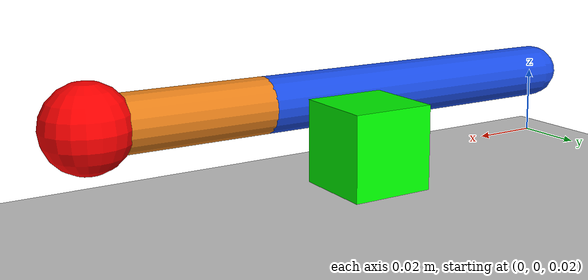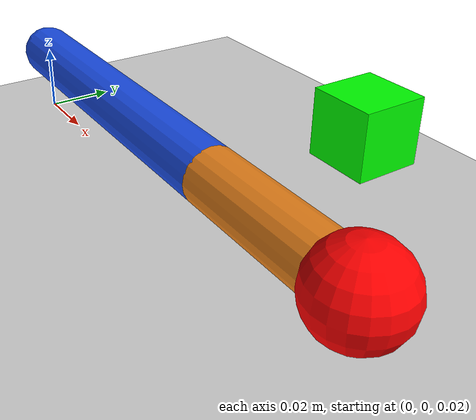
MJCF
<mujoco model="vision_guided_arm">
    <compiler angle="radian"/>

    <option
        timestep="0.002"
        gravity="0 0 0"
    />

    <visual>
        <headlight
            ambient="0.3 0.3 0.3"
            diffuse="0.8 0.8 0.8"
        />

        <global
            offwidth="640"
            offheight="480"
        />
    </visual>

    <worldbody>
        <geom
            name="floor"
            type="plane"
            size="1 1 0.1"
            rgba="0.8 0.8 0.8 1"
        />

        <camera
            name="overhead_camera"
            pos="0 0 0.5"
            xyaxes="1 0 0 0 1 0"
            fovy="60"
        />

        <body
            name="link_1"
            pos="0 0 0.04"
        >
            <joint
                name="shoulder"
                type="hinge"
                axis="0 0 1"
                damping="0.02"
                limited="true"
                range="-3.0 3.0"
            />

            <geom
                name="link_1_geom"
                type="capsule"
                fromto="0 0 0 0.1 0 0"
                size="0.008"
                mass="0.1"
                rgba="0.1 0.3 0.9 1"
                contype="0"
                conaffinity="0"
            />

            <body
                name="link_2"
                pos="0.1 0 0"
            >
                <joint
                    name="elbow"
                    type="hinge"
                    axis="0 0 1"
                    damping="0.02"
                    limited="true"
                    range="-3.0 3.0"
                />

                <geom
                    name="link_2_geom"
                    type="capsule"
                    fromto="0 0 0 0.05 0 0"
                    size="0.008"
                    mass="0.05"
                    rgba="0.9 0.5 0.1 1"
                    contype="0"
                    conaffinity="0"
                />

                <site
                    name="end_effector"
                    type="sphere"
                    pos="0.05 0 0"
                    size="0.012"
                    rgba="1 0 0 1"
                />
            </body>
        </body>

        <body
            name="target"
            pos="0.10 0.05 0.04"
            mocap="true"
        >
            <geom
                name="target_cube"
                type="box"
                size="0.01 0.01 0.01"
                rgba="0 1 0 1"
                contype="0"
                conaffinity="0"
            />
        </body>
    </worldbody>

    <actuator>
        <motor
            name="shoulder_motor"
            joint="shoulder"
            gear="0.05"
            ctrllimited="true"
            ctrlrange="-1 1"
        />

        <motor
            name="elbow_motor"
            joint="elbow"
            gear="0.05"
            ctrllimited="true"
            ctrlrange="-1 1"
        />
    </actuator>

    <sensor>
        <jointpos
            name="shoulder_position"
            joint="shoulder"
        />

        <jointpos
            name="elbow_position"
            joint="elbow"
        />

        <jointvel
            name="shoulder_velocity"
            joint="shoulder"
        />

        <jointvel
            name="elbow_velocity"
            joint="elbow"
        />
    </sensor>
</mujoco>
